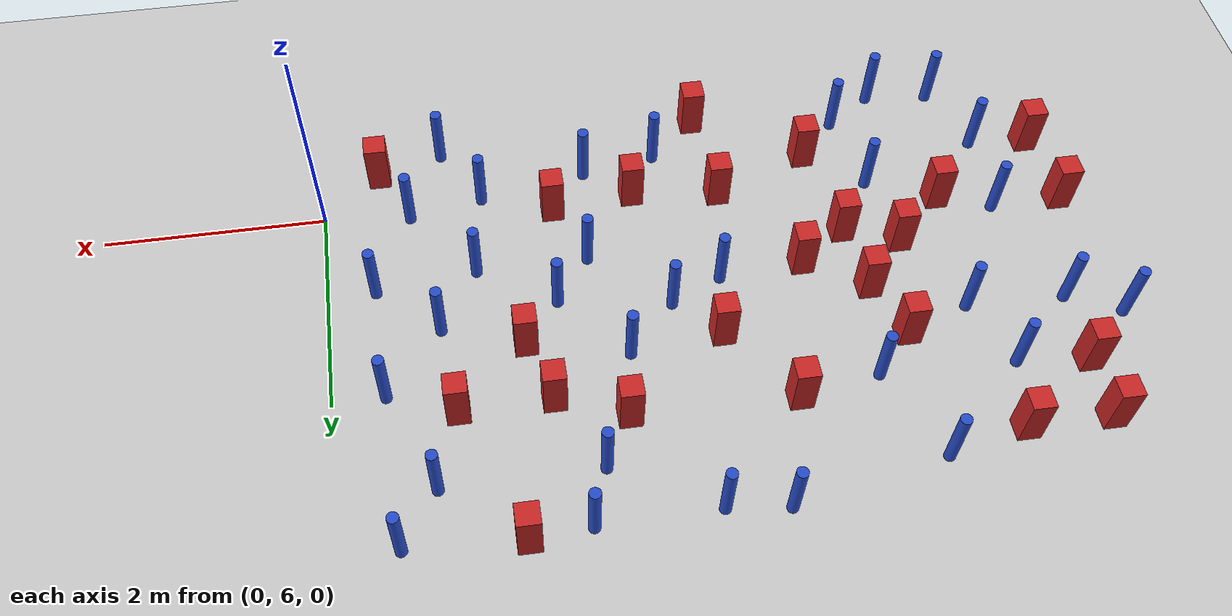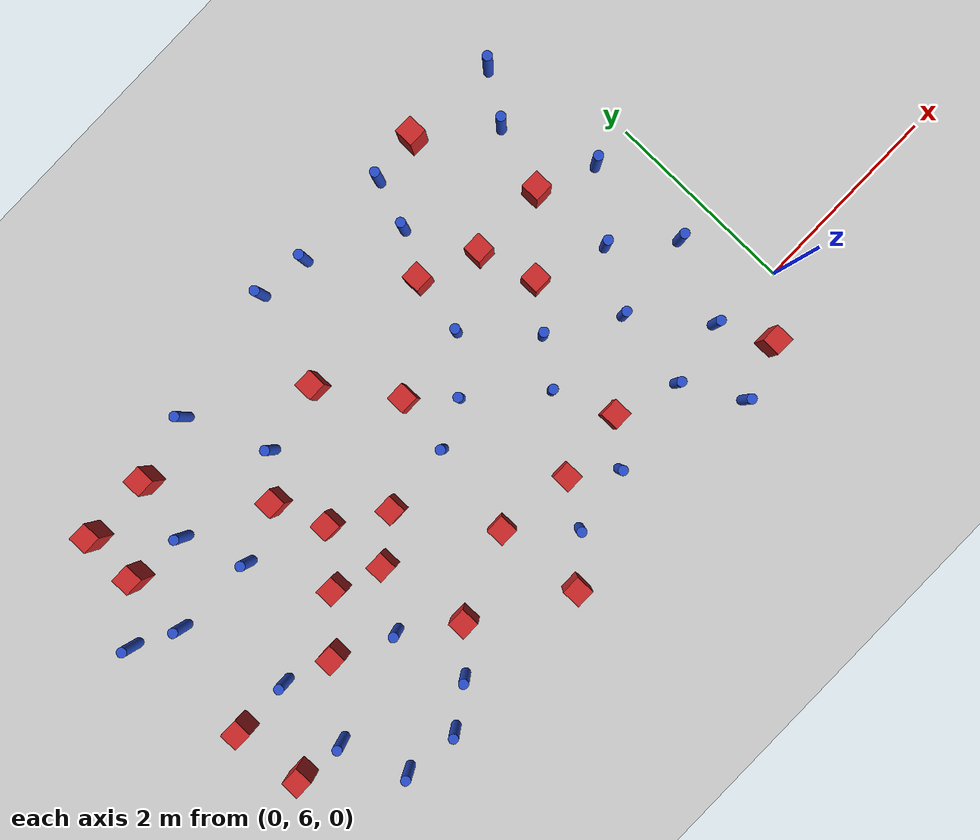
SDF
<sdf version="1.6">
 <world name="default">
  <model name="ground_plane">
   <static>1</static>
   <link name="link">
    <collision name="collision">
     <geometry><plane><normal>0 0 1</normal><size>100 100</size></plane></geometry>
     <surface><friction><ode><mu>100</mu><mu2>50</mu2></ode></friction></surface>
    </collision>
    <visual name="visual">
     <cast_shadows>0</cast_shadows>
     <geometry><plane><normal>0 0 1</normal><size>100 100</size></plane></geometry>
     <material>
      <ambient>1.0 1.0 1.0 1.0</ambient>
      <diffuse>0.8 0.8 0.8 1.0</diffuse>
      <specular>0.01 0.01 0.01 1.000000</specular>
     </material>
    </visual>
   </link>
  </model>
  <model name="pole_obstacle2">
   <static>true</static>
   <pose>-4.61047686809 8.33321980934 2.88873142074e-08 -9.9053668967e-09 4.60219948993e-07 -1.20965994957e-07</pose>
   <link name="link">
    <pose>0 0 0.3 0 -0 0</pose>
    <inertial>
     <mass>1</mass>
     <inertia><ixx>0.145833</ixx><ixy>0</ixy><ixz>0</ixz><iyy>0.145833</iyy><iyz>0</iyz><izz>0.125</izz></inertia>
    </inertial>
    <collision name="collision">
     <geometry><cylinder><radius>0.05</radius><length>.6</length></cylinder></geometry>
    </collision>
    <visual name="visual">
     <geometry><cylinder><radius>0.05</radius><length>.6</length></cylinder></geometry>
     <material>
      <script><name>Gazebo/Blue</name><uri>file://media/materials/scripts/gazebo.material</uri></script>
     </material>
    </visual>
   </link>
  </model>
  <model name="pole_obstacle3">
   <static>true</static>
   <pose>-6.16759911204 5.90546108467 2.88873142074e-08 -9.90536690842e-09 4.60219948965e-07 -1.20965994976e-07</pose>
   <link name="link">
    <pose>0 0 0.3 0 -0 0</pose>
    <inertial>
     <mass>1</mass>
     <inertia><ixx>0.145833</ixx><ixy>0</ixy><ixz>0</ixz><iyy>0.145833</iyy><iyz>0</iyz><izz>0.125</izz></inertia>
    </inertial>
    <collision name="collision">
     <geometry><cylinder><radius>0.05</radius><length>.6</length></cylinder></geometry>
    </collision>
    <visual name="visual">
     <geometry><cylinder><radius>0.05</radius><length>.6</length></cylinder></geometry>
     <material>
      <script><name>Gazebo/Blue</name><uri>file://media/materials/scripts/gazebo.material</uri></script>
     </material>
    </visual>
   </link>
  </model>
  <model name="pole_obstacle12">
   <static>true</static>
   <pose>-6.8986550622 7.99468464526 2.88873142074e-08 -9.90536689847e-09 4.60219948989e-07 -1.2096599496e-07</pose>
   <link name="link">
    <pose>0 0 0.3 0 -0 0</pose>
    <inertial>
     <mass>1</mass>
     <inertia><ixx>0.145833</ixx><ixy>0</ixy><ixz>0</ixz><iyy>0.145833</iyy><iyz>0</iyz><izz>0.125</izz></inertia>
    </inertial>
    <collision name="collision">
     <geometry><cylinder><radius>0.05</radius><length>.6</length></cylinder></geometry>
    </collision>
    <visual name="visual">
     <geometry><cylinder><radius>0.05</radius><length>.6</length></cylinder></geometry>
     <material>
      <script><name>Gazebo/Blue</name><uri>file://media/materials/scripts/gazebo.material</uri></script>
     </material>
    </visual>
   </link>
  </model>
  <model name="square_post_obstacle8">
   <static>true</static>
   <pose>-6.68188247831 5.96038204234 8.22691968438e-08 7.2212513382e-06 -7.54495500217e-07 2.29674213826e-05</pose>
   <link name="link">
    <pose>0 0 0.25 0 -0 0</pose>
    <inertial>
     <mass>100</mass>
     <inertia>
      <ixx>0.166667</ixx>
      <ixy>0</ixy>
      <ixz>0</ixz>
      <iyy>0.166667</iyy>
      <iyz>0</iyz>
      <izz>0.166667</izz>
     </inertia>
    </inertial>
    <collision name="collision"><geometry><box><size>.2 .2 .5</size></box></geometry></collision>
    <visual name="visual">
     <geometry><box><size>.2 .2 .5</size></box></geometry>
     <material>
      <script><name>Gazebo/Red</name><uri>file://media/materials/scripts/gazebo.material</uri></script>
     </material>
    </visual>
   </link>
  </model>
  <model name="square_post_obstacle9">
   <static>true</static>
   <pose>-6.7540369003 6.69056023257 8.22691968438e-08 7.22125133819e-06 -7.54495500217e-07 2.29674213826e-05</pose>
   <link name="link">
    <pose>0 0 0.25 0 -0 0</pose>
    <inertial>
     <mass>100</mass>
     <inertia>
      <ixx>0.166667</ixx>
      <ixy>0</ixy>
      <ixz>0</ixz>
      <iyy>0.166667</iyy>
      <iyz>0</iyz>
      <izz>0.166667</izz>
     </inertia>
    </inertial>
    <collision name="collision"><geometry><box><size>.2 .2 .5</size></box></geometry></collision>
    <visual name="visual">
     <geometry><box><size>.2 .2 .5</size></box></geometry>
     <material>
      <script><name>Gazebo/Red</name><uri>file://media/materials/scripts/gazebo.material</uri></script>
     </material>
    </visual>
   </link>
  </model>
  <model name="pole_obstacle15">
   <static>true</static>
   <pose>-5.55113076476 7.75056409933 2.88873142074e-08 -9.90536690842e-09 4.60219948965e-07 -1.20965994976e-07</pose>
   <link name="link">
    <pose>0 0 0.3 0 -0 0</pose>
    <inertial>
     <mass>1</mass>
     <inertia><ixx>0.145833</ixx><ixy>0</ixy><ixz>0</ixz><iyy>0.145833</iyy><iyz>0</iyz><izz>0.125</izz></inertia>
    </inertial>
    <collision name="collision">
     <geometry><cylinder><radius>0.05</radius><length>.6</length></cylinder></geometry>
    </collision>
    <visual name="visual">
     <geometry><cylinder><radius>0.05</radius><length>.6</length></cylinder></geometry>
     <material>
      <script><name>Gazebo/Blue</name><uri>file://media/materials/scripts/gazebo.material</uri></script>
     </material>
    </visual>
   </link>
  </model>
  <model name="pole_obstacle16">
   <static>true</static>
   <pose>-0.505072555338 9.38024264387 2.88873142074e-08 -9.90536691171e-09 4.60219948957e-07 -1.20965994981e-07</pose>
   <link name="link">
    <pose>0 0 0.3 0 -0 0</pose>
    <inertial>
     <mass>1</mass>
     <inertia><ixx>0.145833</ixx><ixy>0</ixy><ixz>0</ixz><iyy>0.145833</iyy><iyz>0</iyz><izz>0.125</izz></inertia>
    </inertial>
    <collision name="collision">
     <geometry><cylinder><radius>0.05</radius><length>.6</length></cylinder></geometry>
    </collision>
    <visual name="visual">
     <geometry><cylinder><radius>0.05</radius><length>.6</length></cylinder></geometry>
     <material>
      <script><name>Gazebo/Blue</name><uri>file://media/materials/scripts/gazebo.material</uri></script>
     </material>
    </visual>
   </link>
  </model>
  <model name="square_post_obstacle16">
   <static>true</static>
   <pose>-5.66090826564 9.00581298364 8.22691968438e-08 7.22125133819e-06 -7.54495500217e-07 2.29674213826e-05</pose>
   <link name="link">
    <pose>0 0 0.25 0 -0 0</pose>
    <inertial>
     <mass>100</mass>
     <inertia>
      <ixx>0.166667</ixx>
      <ixy>0</ixy>
      <ixz>0</ixz>
      <iyy>0.166667</iyy>
      <iyz>0</iyz>
      <izz>0.166667</izz>
     </inertia>
    </inertial>
    <collision name="collision"><geometry><box><size>.2 .2 .5</size></box></geometry></collision>
    <visual name="visual">
     <geometry><box><size>.2 .2 .5</size></box></geometry>
     <material>
      <script><name>Gazebo/Red</name><uri>file://media/materials/scripts/gazebo.material</uri></script>
     </material>
    </visual>
   </link>
  </model>
  <model name="pole_obstacle20">
   <static>true</static>
   <pose>-0.825885710078 8.897537406 2.88873142074e-08 -9.90536690779e-09 4.60219948967e-07 -1.20965994975e-07</pose>
   <link name="link">
    <pose>0 0 0.3 0 -0 0</pose>
    <inertial>
     <mass>1</mass>
     <inertia><ixx>0.145833</ixx><ixy>0</ixy><ixz>0</ixz><iyy>0.145833</iyy><iyz>0</iyz><izz>0.125</izz></inertia>
    </inertial>
    <collision name="collision">
     <geometry><cylinder><radius>0.05</radius><length>.6</length></cylinder></geometry>
    </collision>
    <visual name="visual">
     <geometry><cylinder><radius>0.05</radius><length>.6</length></cylinder></geometry>
     <material>
      <script><name>Gazebo/Blue</name><uri>file://media/materials/scripts/gazebo.material</uri></script>
     </material>
    </visual>
   </link>
  </model>
  <model name="square_post_obstacle20">
   <static>true</static>
   <pose>-3.62441373691 6.20708967607 8.22691968438e-08 7.2212513382e-06 -7.54495500217e-07 2.29674213826e-05</pose>
   <link name="link">
    <pose>0 0 0.25 0 -0 0</pose>
    <inertial>
     <mass>100</mass>
     <inertia>
      <ixx>0.166667</ixx>
      <ixy>0</ixy>
      <ixz>0</ixz>
      <iyy>0.166667</iyy>
      <iyz>0</iyz>
      <izz>0.166667</izz>
     </inertia>
    </inertial>
    <collision name="collision"><geometry><box><size>.2 .2 .5</size></box></geometry></collision>
    <visual name="visual">
     <geometry><box><size>.2 .2 .5</size></box></geometry>
     <material>
      <script><name>Gazebo/Red</name><uri>file://media/materials/scripts/gazebo.material</uri></script>
     </material>
    </visual>
   </link>
  </model>
  <model name="square_post_obstacle22">
   <static>true</static>
   <pose>-6.40739394139 8.43929187216 8.22691968438e-08 7.22125133819e-06 -7.54495500217e-07 2.29674213826e-05</pose>
   <link name="link">
    <pose>0 0 0.25 0 -0 0</pose>
    <inertial>
     <mass>100</mass>
     <inertia>
      <ixx>0.166667</ixx>
      <ixy>0</ixy>
      <ixz>0</ixz>
      <iyy>0.166667</iyy>
      <iyz>0</iyz>
      <izz>0.166667</izz>
     </inertia>
    </inertial>
    <collision name="collision"><geometry><box><size>.2 .2 .5</size></box></geometry></collision>
    <visual name="visual">
     <geometry><box><size>.2 .2 .5</size></box></geometry>
     <material>
      <script><name>Gazebo/Red</name><uri>file://media/materials/scripts/gazebo.material</uri></script>
     </material>
    </visual>
   </link>
  </model>
  <model name="square_post_obstacle23">
   <static>true</static>
   <pose>-1.67722835875 7.62699790733 8.22691968438e-08 7.2212513382e-06 -7.54495500217e-07 2.29674213826e-05</pose>
   <link name="link">
    <pose>0 0 0.25 0 -0 0</pose>
    <inertial>
     <mass>100</mass>
     <inertia>
      <ixx>0.166667</ixx>
      <ixy>0</ixy>
      <ixz>0</ixz>
      <iyy>0.166667</iyy>
      <iyz>0</iyz>
      <izz>0.166667</izz>
     </inertia>
    </inertial>
    <collision name="collision"><geometry><box><size>.2 .2 .5</size></box></geometry></collision>
    <visual name="visual">
     <geometry><box><size>.2 .2 .5</size></box></geometry>
     <material>
      <script><name>Gazebo/Red</name><uri>file://media/materials/scripts/gazebo.material</uri></script>
     </material>
    </visual>
   </link>
  </model>
  <model name="pole_obstacle31">
   <static>true</static>
   <pose>-3.46925933112 7.15142475565 2.88873142074e-08 -9.90536689859e-09 4.60219948989e-07 -1.20965994961e-07</pose>
   <link name="link">
    <pose>0 0 0.3 0 -0 0</pose>
    <inertial>
     <mass>1</mass>
     <inertia><ixx>0.145833</ixx><ixy>0</ixy><ixz>0</ixz><iyy>0.145833</iyy><iyz>0</iyz><izz>0.125</izz></inertia>
    </inertial>
    <collision name="collision">
     <geometry><cylinder><radius>0.05</radius><length>.6</length></cylinder></geometry>
    </collision>
    <visual name="visual">
     <geometry><cylinder><radius>0.05</radius><length>.6</length></cylinder></geometry>
     <material>
      <script><name>Gazebo/Blue</name><uri>file://media/materials/scripts/gazebo.material</uri></script>
     </material>
    </visual>
   </link>
  </model>
  <model name="square_post_obstacle27">
   <static>true</static>
   <pose>-4.74917922006 7.44215000752 8.22691968438e-08 7.2212513382e-06 -7.54495500217e-07 2.29674213826e-05</pose>
   <link name="link">
    <pose>0 0 0.25 0 -0 0</pose>
    <inertial>
     <mass>100</mass>
     <inertia>
      <ixx>0.166667</ixx>
      <ixy>0</ixy>
      <ixz>0</ixz>
      <iyy>0.166667</iyy>
      <iyz>0</iyz>
      <izz>0.166667</izz>
     </inertia>
    </inertial>
    <collision name="collision"><geometry><box><size>.2 .2 .5</size></box></geometry></collision>
    <visual name="visual">
     <geometry><box><size>.2 .2 .5</size></box></geometry>
     <material>
      <script><name>Gazebo/Red</name><uri>file://media/materials/scripts/gazebo.material</uri></script>
     </material>
    </visual>
   </link>
  </model>
  <model name="square_post_obstacle28">
   <static>true</static>
   <pose>-1.04694827906 8.21849046534 8.22691968438e-08 7.22125133819e-06 -7.54495500217e-07 2.29674213826e-05</pose>
   <link name="link">
    <pose>0 0 0.25 0 -0 0</pose>
    <inertial>
     <mass>100</mass>
     <inertia>
      <ixx>0.166667</ixx>
      <ixy>0</ixy>
      <ixz>0</ixz>
      <iyy>0.166667</iyy>
      <iyz>0</iyz>
      <izz>0.166667</izz>
     </inertia>
    </inertial>
    <collision name="collision"><geometry><box><size>.2 .2 .5</size></box></geometry></collision>
    <visual name="visual">
     <geometry><box><size>.2 .2 .5</size></box></geometry>
     <material>
      <script><name>Gazebo/Red</name><uri>file://media/materials/scripts/gazebo.material</uri></script>
     </material>
    </visual>
   </link>
  </model>
  <model name="pole_obstacle39">
   <static>true</static>
   <pose>-2.01759208878 9.39129024135 2.88873142074e-08 -9.9053669068e-09 4.60219948969e-07 -1.20965994974e-07</pose>
   <link name="link">
    <pose>0 0 0.3 0 -0 0</pose>
    <inertial>
     <mass>1</mass>
     <inertia><ixx>0.145833</ixx><ixy>0</ixy><ixz>0</ixz><iyy>0.145833</iyy><iyz>0</iyz><izz>0.125</izz></inertia>
    </inertial>
    <collision name="collision">
     <geometry><cylinder><radius>0.05</radius><length>.6</length></cylinder></geometry>
    </collision>
    <visual name="visual">
     <geometry><cylinder><radius>0.05</radius><length>.6</length></cylinder></geometry>
     <material>
      <script><name>Gazebo/Blue</name><uri>file://media/materials/scripts/gazebo.material</uri></script>
     </material>
    </visual>
   </link>
  </model>
  <model name="pole_obstacle45">
   <static>true</static>
   <pose>-1.32857079894 6.78585005766 2.88873142074e-08 -9.90536689852e-09 4.60219948989e-07 -1.2096599496e-07</pose>
   <link name="link">
    <pose>0 0 0.3 0 -0 0</pose>
    <inertial>
     <mass>1</mass>
     <inertia><ixx>0.145833</ixx><ixy>0</ixy><ixz>0</ixz><iyy>0.145833</iyy><iyz>0</iyz><izz>0.125</izz></inertia>
    </inertial>
    <collision name="collision">
     <geometry><cylinder><radius>0.05</radius><length>.6</length></cylinder></geometry>
    </collision>
    <visual name="visual">
     <geometry><cylinder><radius>0.05</radius><length>.6</length></cylinder></geometry>
     <material>
      <script><name>Gazebo/Blue</name><uri>file://media/materials/scripts/gazebo.material</uri></script>
     </material>
    </visual>
   </link>
  </model>
  <model name="square_post_obstacle37">
   <static>true</static>
   <pose>-2.4490061269 8.44310439441 8.22691968438e-08 7.22125133819e-06 -7.54495500217e-07 2.29674213826e-05</pose>
   <link name="link">
    <pose>0 0 0.25 0 -0 0</pose>
    <inertial>
     <mass>100</mass>
     <inertia>
      <ixx>0.166667</ixx>
      <ixy>0</ixy>
      <ixz>0</ixz>
      <iyy>0.166667</iyy>
      <iyz>0</iyz>
      <izz>0.166667</izz>
     </inertia>
    </inertial>
    <collision name="collision"><geometry><box><size>.2 .2 .5</size></box></geometry></collision>
    <visual name="visual">
     <geometry><box><size>.2 .2 .5</size></box></geometry>
     <material>
      <script><name>Gazebo/Red</name><uri>file://media/materials/scripts/gazebo.material</uri></script>
     </material>
    </visual>
   </link>
  </model>
  <model name="pole_obstacle51">
   <static>true</static>
   <pose>-2.9995978725 7.37171358002 2.88873142074e-08 -9.90536689859e-09 4.60219948989e-07 -1.20965994961e-07</pose>
   <link name="link">
    <pose>0 0 0.3 0 -0 0</pose>
    <inertial>
     <mass>1</mass>
     <inertia><ixx>0.145833</ixx><ixy>0</ixy><ixz>0</ixz><iyy>0.145833</iyy><iyz>0</iyz><izz>0.125</izz></inertia>
    </inertial>
    <collision name="collision">
     <geometry><cylinder><radius>0.05</radius><length>.6</length></cylinder></geometry>
    </collision>
    <visual name="visual">
     <geometry><cylinder><radius>0.05</radius><length>.6</length></cylinder></geometry>
     <material>
      <script><name>Gazebo/Blue</name><uri>file://media/materials/scripts/gazebo.material</uri></script>
     </material>
    </visual>
   </link>
  </model>
  <model name="pole_obstacle55">
   <static>true</static>
   <pose>-2.32916126313 6.77885882836 2.88873142074e-08 -9.90536689859e-09 4.60219948989e-07 -1.20965994961e-07</pose>
   <link name="link">
    <pose>0 0 0.3 0 -0 0</pose>
    <inertial>
     <mass>1</mass>
     <inertia><ixx>0.145833</ixx><ixy>0</ixy><ixz>0</ixz><iyy>0.145833</iyy><iyz>0</iyz><izz>0.125</izz></inertia>
    </inertial>
    <collision name="collision">
     <geometry><cylinder><radius>0.05</radius><length>.6</length></cylinder></geometry>
    </collision>
    <visual name="visual">
     <geometry><cylinder><radius>0.05</radius><length>.6</length></cylinder></geometry>
     <material>
      <script><name>Gazebo/Blue</name><uri>file://media/materials/scripts/gazebo.material</uri></script>
     </material>
    </visual>
   </link>
  </model>
  <model name="pole_obstacle60">
   <static>true</static>
   <pose>-0.426104892559 6.89767492997 2.88873142074e-08 -9.90536689683e-09 4.60219948993e-07 -1.20965994957e-07</pose>
   <link name="link">
    <pose>0 0 0.3 0 -0 0</pose>
    <inertial>
     <mass>1</mass>
     <inertia><ixx>0.145833</ixx><ixy>0</ixy><ixz>0</ixz><iyy>0.145833</iyy><iyz>0</iyz><izz>0.125</izz></inertia>
    </inertial>
    <collision name="collision">
     <geometry><cylinder><radius>0.05</radius><length>.6</length></cylinder></geometry>
    </collision>
    <visual name="visual">
     <geometry><cylinder><radius>0.05</radius><length>.6</length></cylinder></geometry>
     <material>
      <script><name>Gazebo/Blue</name><uri>file://media/materials/scripts/gazebo.material</uri></script>
     </material>
    </visual>
   </link>
  </model>
  <model name="square_post_obstacle47">
   <static>true</static>
   <pose>-4.51282511651 5.86225947715 8.22691968438e-08 7.2212513382e-06 -7.54495500217e-07 2.29674213826e-05</pose>
   <link name="link">
    <pose>0 0 0.25 0 -0 0</pose>
    <inertial>
     <mass>100</mass>
     <inertia>
      <ixx>0.166667</ixx>
      <ixy>0</ixy>
      <ixz>0</ixz>
      <iyy>0.166667</iyy>
      <iyz>0</iyz>
      <izz>0.166667</izz>
     </inertia>
    </inertial>
    <collision name="collision"><geometry><box><size>.2 .2 .5</size></box></geometry></collision>
    <visual name="visual">
     <geometry><box><size>.2 .2 .5</size></box></geometry>
     <material>
      <script><name>Gazebo/Red</name><uri>file://media/materials/scripts/gazebo.material</uri></script>
     </material>
    </visual>
   </link>
  </model>
  <model name="pole_obstacle77">
   <static>true</static>
   <pose>-5.03957593601 6.25631579111 2.88873142074e-08 -9.90536690842e-09 4.60219948965e-07 -1.20965994976e-07</pose>
   <link name="link">
    <pose>0 0 0.3 0 -0 0</pose>
    <inertial>
     <mass>1</mass>
     <inertia><ixx>0.145833</ixx><ixy>0</ixy><ixz>0</ixz><iyy>0.145833</iyy><iyz>0</iyz><izz>0.125</izz></inertia>
    </inertial>
    <collision name="collision">
     <geometry><cylinder><radius>0.05</radius><length>.6</length></cylinder></geometry>
    </collision>
    <visual name="visual">
     <geometry><cylinder><radius>0.05</radius><length>.6</length></cylinder></geometry>
     <material>
      <script><name>Gazebo/Blue</name><uri>file://media/materials/scripts/gazebo.material</uri></script>
     </material>
    </visual>
   </link>
  </model>
  <model name="pole_obstacle78">
   <static>true</static>
   <pose>-0.779376938567 6.09048975539 2.88873142074e-08 -9.90536689661e-09 4.60219948993e-07 -1.20965994957e-07</pose>
   <link name="link">
    <pose>0 0 0.3 0 -0 0</pose>
    <inertial>
     <mass>1</mass>
     <inertia><ixx>0.145833</ixx><ixy>0</ixy><ixz>0</ixz><iyy>0.145833</iyy><iyz>0</iyz><izz>0.125</izz></inertia>
    </inertial>
    <collision name="collision">
     <geometry><cylinder><radius>0.05</radius><length>.6</length></cylinder></geometry>
    </collision>
    <visual name="visual">
     <geometry><cylinder><radius>0.05</radius><length>.6</length></cylinder></geometry>
     <material>
      <script><name>Gazebo/Blue</name><uri>file://media/materials/scripts/gazebo.material</uri></script>
     </material>
    </visual>
   </link>
  </model>
  <model name="pole_obstacle80">
   <static>true</static>
   <pose>-2.00517174281 7.21202672843 2.88873142074e-08 -9.90536689575e-09 4.60219948995e-07 -1.20965994956e-07</pose>
   <link name="link">
    <pose>0 0 0.3 0 -0 0</pose>
    <inertial>
     <mass>1</mass>
     <inertia><ixx>0.145833</ixx><ixy>0</ixy><ixz>0</ixz><iyy>0.145833</iyy><iyz>0</iyz><izz>0.125</izz></inertia>
    </inertial>
    <collision name="collision">
     <geometry><cylinder><radius>0.05</radius><length>.6</length></cylinder></geometry>
    </collision>
    <visual name="visual">
     <geometry><cylinder><radius>0.05</radius><length>.6</length></cylinder></geometry>
     <material>
      <script><name>Gazebo/Blue</name><uri>file://media/materials/scripts/gazebo.material</uri></script>
     </material>
    </visual>
   </link>
  </model>
  <model name="square_post_obstacle69">
   <static>true</static>
   <pose>-1.49828881373 9.43699931908 8.22691968438e-08 7.22125133819e-06 -7.54495500217e-07 2.29674213826e-05</pose>
   <link name="link">
    <pose>0 0 0.25 0 -0 0</pose>
    <inertial>
     <mass>100</mass>
     <inertia>
      <ixx>0.166667</ixx>
      <ixy>0</ixy>
      <ixz>0</ixz>
      <iyy>0.166667</iyy>
      <iyz>0</iyz>
      <izz>0.166667</izz>
     </inertia>
    </inertial>
    <collision name="collision"><geometry><box><size>.2 .2 .5</size></box></geometry></collision>
    <visual name="visual">
     <geometry><box><size>.2 .2 .5</size></box></geometry>
     <material>
      <script><name>Gazebo/Red</name><uri>file://media/materials/scripts/gazebo.material</uri></script>
     </material>
    </visual>
   </link>
  </model>
  <model name="square_post_obstacle76">
   <static>true</static>
   <pose>-2.08411877581 6.18728832296 8.22691968438e-08 7.22125133819e-06 -7.54495500217e-07 2.29674213826e-05</pose>
   <link name="link">
    <pose>0 0 0.25 0 -0 0</pose>
    <inertial>
     <mass>100</mass>
     <inertia>
      <ixx>0.166667</ixx>
      <ixy>0</ixy>
      <ixz>0</ixz>
      <iyy>0.166667</iyy>
      <iyz>0</iyz>
      <izz>0.166667</izz>
     </inertia>
    </inertial>
    <collision name="collision"><geometry><box><size>.2 .2 .5</size></box></geometry></collision>
    <visual name="visual">
     <geometry><box><size>.2 .2 .5</size></box></geometry>
     <material>
      <script><name>Gazebo/Red</name><uri>file://media/materials/scripts/gazebo.material</uri></script>
     </material>
    </visual>
   </link>
  </model>
  <model name="pole_obstacle98">
   <static>true</static>
   <pose>-5.33621778216 5.19457930177 2.88873142074e-08 -9.90536690842e-09 4.60219948965e-07 -1.20965994976e-07</pose>
   <link name="link">
    <pose>0 0 0.3 0 -0 0</pose>
    <inertial>
     <mass>1</mass>
     <inertia><ixx>0.145833</ixx><ixy>0</ixy><ixz>0</ixz><iyy>0.145833</iyy><iyz>0</iyz><izz>0.125</izz></inertia>
    </inertial>
    <collision name="collision">
     <geometry><cylinder><radius>0.05</radius><length>.6</length></cylinder></geometry>
    </collision>
    <visual name="visual">
     <geometry><cylinder><radius>0.05</radius><length>.6</length></cylinder></geometry>
     <material>
      <script><name>Gazebo/Blue</name><uri>file://media/materials/scripts/gazebo.material</uri></script>
     </material>
    </visual>
   </link>
  </model>
  <model name="pole_obstacle106">
   <static>true</static>
   <pose>-6.43738177591 7.77346182976 2.88873142074e-08 -9.90536690842e-09 4.60219948965e-07 -1.20965994976e-07</pose>
   <link name="link">
    <pose>0 0 0.3 0 -0 0</pose>
    <inertial>
     <mass>1</mass>
     <inertia><ixx>0.145833</ixx><ixy>0</ixy><ixz>0</ixz><iyy>0.145833</iyy><iyz>0</iyz><izz>0.125</izz></inertia>
    </inertial>
    <collision name="collision">
     <geometry><cylinder><radius>0.05</radius><length>.6</length></cylinder></geometry>
    </collision>
    <visual name="visual">
     <geometry><cylinder><radius>0.05</radius><length>.6</length></cylinder></geometry>
     <material>
      <script><name>Gazebo/Blue</name><uri>file://media/materials/scripts/gazebo.material</uri></script>
     </material>
    </visual>
   </link>
  </model>
  <model name="square_post_obstacle101">
   <static>true</static>
   <pose>-3.54421731048 5.2884571698 8.22691968438e-08 7.2212513382e-06 -7.54495500217e-07 2.29674213826e-05</pose>
   <link name="link">
    <pose>0 0 0.25 0 -0 0</pose>
    <inertial>
     <mass>100</mass>
     <inertia>
      <ixx>0.166667</ixx>
      <ixy>0</ixy>
      <ixz>0</ixz>
      <iyy>0.166667</iyy>
      <iyz>0</iyz>
      <izz>0.166667</izz>
     </inertia>
    </inertial>
    <collision name="collision"><geometry><box><size>.2 .2 .5</size></box></geometry></collision>
    <visual name="visual">
     <geometry><box><size>.2 .2 .5</size></box></geometry>
     <material>
      <script><name>Gazebo/Red</name><uri>file://media/materials/scripts/gazebo.material</uri></script>
     </material>
    </visual>
   </link>
  </model>
  <model name="pole_obstacle109">
   <static>true</static>
   <pose>-2.4267305476 5.78269095757 2.88873142074e-08 -9.90536689859e-09 4.60219948989e-07 -1.20965994961e-07</pose>
   <link name="link">
    <pose>0 0 0.3 0 -0 0</pose>
    <inertial>
     <mass>1</mass>
     <inertia><ixx>0.145833</ixx><ixy>0</ixy><ixz>0</ixz><iyy>0.145833</iyy><iyz>0</iyz><izz>0.125</izz></inertia>
    </inertial>
    <collision name="collision">
     <geometry><cylinder><radius>0.05</radius><length>.6</length></cylinder></geometry>
    </collision>
    <visual name="visual">
     <geometry><cylinder><radius>0.05</radius><length>.6</length></cylinder></geometry>
     <material>
      <script><name>Gazebo/Blue</name><uri>file://media/materials/scripts/gazebo.material</uri></script>
     </material>
    </visual>
   </link>
  </model>
  <model name="pole_obstacle116">
   <static>true</static>
   <pose>-5.80159872964 8.36854777862 2.88873142074e-08 -9.9053668967e-09 4.60219948993e-07 -1.20965994957e-07</pose>
   <link name="link">
    <pose>0 0 0.3 0 -0 0</pose>
    <inertial>
     <mass>1</mass>
     <inertia><ixx>0.145833</ixx><ixy>0</ixy><ixz>0</ixz><iyy>0.145833</iyy><iyz>0</iyz><izz>0.125</izz></inertia>
    </inertial>
    <collision name="collision">
     <geometry><cylinder><radius>0.05</radius><length>.6</length></cylinder></geometry>
    </collision>
    <visual name="visual">
     <geometry><cylinder><radius>0.05</radius><length>.6</length></cylinder></geometry>
     <material>
      <script><name>Gazebo/Blue</name><uri>file://media/materials/scripts/gazebo.material</uri></script>
     </material>
    </visual>
   </link>
  </model>
  <model name="square_post_obstacle117">
   <static>true</static>
   <pose>-4.66564887285 6.79314774167 8.22691968438e-08 7.22125133819e-06 -7.54495500217e-07 2.29674213826e-05</pose>
   <link name="link">
    <pose>0 0 0.25 0 -0 0</pose>
    <inertial>
     <mass>100</mass>
     <inertia>
      <ixx>0.166667</ixx>
      <ixy>0</ixy>
      <ixz>0</ixz>
      <iyy>0.166667</iyy>
      <iyz>0</iyz>
      <izz>0.166667</izz>
     </inertia>
    </inertial>
    <collision name="collision"><geometry><box><size>.2 .2 .5</size></box></geometry></collision>
    <visual name="visual">
     <geometry><box><size>.2 .2 .5</size></box></geometry>
     <material>
      <script><name>Gazebo/Red</name><uri>file://media/materials/scripts/gazebo.material</uri></script>
     </material>
    </visual>
   </link>
  </model>
  <model name="pole_obstacle130">
   <static>true</static>
   <pose>-0.966519469347 7.37336321938 2.88873142074e-08 -9.90536689644e-09 4.60219948994e-07 -1.20965994957e-07</pose>
   <link name="link">
    <pose>0 0 0.3 0 -0 0</pose>
    <inertial>
     <mass>1</mass>
     <inertia><ixx>0.145833</ixx><ixy>0</ixy><ixz>0</ixz><iyy>0.145833</iyy><iyz>0</iyz><izz>0.125</izz></inertia>
    </inertial>
    <collision name="collision">
     <geometry><cylinder><radius>0.05</radius><length>.6</length></cylinder></geometry>
    </collision>
    <visual name="visual">
     <geometry><cylinder><radius>0.05</radius><length>.6</length></cylinder></geometry>
     <material>
      <script><name>Gazebo/Blue</name><uri>file://media/materials/scripts/gazebo.material</uri></script>
     </material>
    </visual>
   </link>
  </model>
  <model name="pole_obstacle133">
   <static>true</static>
   <pose>-2.19064762296 8.88941813704 2.88873142074e-08 -9.90536692318e-09 4.6021994893e-07 -1.20965994988e-07</pose>
   <link name="link">
    <pose>0 0 0.3 0 -0 0</pose>
    <inertial>
     <mass>1</mass>
     <inertia><ixx>0.145833</ixx><ixy>0</ixy><ixz>0</ixz><iyy>0.145833</iyy><iyz>0</iyz><izz>0.125</izz></inertia>
    </inertial>
    <collision name="collision">
     <geometry><cylinder><radius>0.05</radius><length>.6</length></cylinder></geometry>
    </collision>
    <visual name="visual">
     <geometry><cylinder><radius>0.05</radius><length>.6</length></cylinder></geometry>
     <material>
      <script><name>Gazebo/Blue</name><uri>file://media/materials/scripts/gazebo.material</uri></script>
     </material>
    </visual>
   </link>
  </model>
  <model name="pole_obstacle145">
   <static>true</static>
   <pose>-1.44740429254 5.95969155541 2.88873142074e-08 -9.90536689852e-09 4.60219948989e-07 -1.2096599496e-07</pose>
   <link name="link">
    <pose>0 0 0.3 0 -0 0</pose>
    <inertial>
     <mass>1</mass>
     <inertia><ixx>0.145833</ixx><ixy>0</ixy><ixz>0</ixz><iyy>0.145833</iyy><iyz>0</iyz><izz>0.125</izz></inertia>
    </inertial>
    <collision name="collision">
     <geometry><cylinder><radius>0.05</radius><length>.6</length></cylinder></geometry>
    </collision>
    <visual name="visual">
     <geometry><cylinder><radius>0.05</radius><length>.6</length></cylinder></geometry>
     <material>
      <script><name>Gazebo/Blue</name><uri>file://media/materials/scripts/gazebo.material</uri></script>
     </material>
    </visual>
   </link>
  </model>
  <model name="pole_obstacle153">
   <static>true</static>
   <pose>-3.06597285531 9.37279373408 2.88873142074e-08 -9.9053668994e-09 4.60219948987e-07 -1.20965994963e-07</pose>
   <link name="link">
    <pose>0 0 0.3 0 -0 0</pose>
    <inertial>
     <mass>1</mass>
     <inertia><ixx>0.145833</ixx><ixy>0</ixy><ixz>0</ixz><iyy>0.145833</iyy><iyz>0</iyz><izz>0.125</izz></inertia>
    </inertial>
    <collision name="collision">
     <geometry><cylinder><radius>0.05</radius><length>.6</length></cylinder></geometry>
    </collision>
    <visual name="visual">
     <geometry><cylinder><radius>0.05</radius><length>.6</length></cylinder></geometry>
     <material>
      <script><name>Gazebo/Blue</name><uri>file://media/materials/scripts/gazebo.material</uri></script>
     </material>
    </visual>
   </link>
  </model>
  <model name="square_post_obstacle152">
   <static>true</static>
   <pose>-3.88503110338 8.46802140746 8.22691968438e-08 7.22125133819e-06 -7.54495500217e-07 2.29674213826e-05</pose>
   <link name="link">
    <pose>0 0 0.25 0 -0 0</pose>
    <inertial>
     <mass>100</mass>
     <inertia>
      <ixx>0.166667</ixx>
      <ixy>0</ixy>
      <ixz>0</ixz>
      <iyy>0.166667</iyy>
      <iyz>0</iyz>
      <izz>0.166667</izz>
     </inertia>
    </inertial>
    <collision name="collision"><geometry><box><size>.2 .2 .5</size></box></geometry></collision>
    <visual name="visual">
     <geometry><box><size>.2 .2 .5</size></box></geometry>
     <material>
      <script><name>Gazebo/Red</name><uri>file://media/materials/scripts/gazebo.material</uri></script>
     </material>
    </visual>
   </link>
  </model>
  <model name="pole_obstacle161">
   <static>true</static>
   <pose>-3.59690093863 9.43725016454 2.88873142074e-08 -9.90536692318e-09 4.6021994893e-07 -1.20965994988e-07</pose>
   <link name="link">
    <pose>0 0 0.3 0 -0 0</pose>
    <inertial>
     <mass>1</mass>
     <inertia><ixx>0.145833</ixx><ixy>0</ixy><ixz>0</ixz><iyy>0.145833</iyy><iyz>0</iyz><izz>0.125</izz></inertia>
    </inertial>
    <collision name="collision">
     <geometry><cylinder><radius>0.05</radius><length>.6</length></cylinder></geometry>
    </collision>
    <visual name="visual">
     <geometry><cylinder><radius>0.05</radius><length>.6</length></cylinder></geometry>
     <material>
      <script><name>Gazebo/Blue</name><uri>file://media/materials/scripts/gazebo.material</uri></script>
     </material>
    </visual>
   </link>
  </model>
  <model name="pole_obstacle162">
   <static>true</static>
   <pose>-0.459836084182 7.98311745206 2.88873142074e-08 -9.90536690338e-09 4.60219948977e-07 -1.2096599497e-07</pose>
   <link name="link">
    <pose>0 0 0.3 0 -0 0</pose>
    <inertial>
     <mass>1</mass>
     <inertia><ixx>0.145833</ixx><ixy>0</ixy><ixz>0</ixz><iyy>0.145833</iyy><iyz>0</iyz><izz>0.125</izz></inertia>
    </inertial>
    <collision name="collision">
     <geometry><cylinder><radius>0.05</radius><length>.6</length></cylinder></geometry>
    </collision>
    <visual name="visual">
     <geometry><cylinder><radius>0.05</radius><length>.6</length></cylinder></geometry>
     <material>
      <script><name>Gazebo/Blue</name><uri>file://media/materials/scripts/gazebo.material</uri></script>
     </material>
    </visual>
   </link>
  </model>
  <model name="pole_obstacle163">
   <static>true</static>
   <pose>-5.92762548571 5.24695040892 2.88873142074e-08 -9.90536690842e-09 4.60219948965e-07 -1.20965994976e-07</pose>
   <link name="link">
    <pose>0 0 0.3 0 -0 0</pose>
    <inertial>
     <mass>1</mass>
     <inertia><ixx>0.145833</ixx><ixy>0</ixy><ixz>0</ixz><iyy>0.145833</iyy><iyz>0</iyz><izz>0.125</izz></inertia>
    </inertial>
    <collision name="collision">
     <geometry><cylinder><radius>0.05</radius><length>.6</length></cylinder></geometry>
    </collision>
    <visual name="visual">
     <geometry><cylinder><radius>0.05</radius><length>.6</length></cylinder></geometry>
     <material>
      <script><name>Gazebo/Blue</name><uri>file://media/materials/scripts/gazebo.material</uri></script>
     </material>
    </visual>
   </link>
  </model>
  <model name="pole_obstacle168">
   <static>true</static>
   <pose>-4.96582038682 9.16520095948 2.88873142074e-08 -9.9053668967e-09 4.60219948993e-07 -1.20965994957e-07</pose>
   <link name="link">
    <pose>0 0 0.3 0 -0 0</pose>
    <inertial>
     <mass>1</mass>
     <inertia><ixx>0.145833</ixx><ixy>0</ixy><ixz>0</ixz><iyy>0.145833</iyy><iyz>0</iyz><izz>0.125</izz></inertia>
    </inertial>
    <collision name="collision">
     <geometry><cylinder><radius>0.05</radius><length>.6</length></cylinder></geometry>
    </collision>
    <visual name="visual">
     <geometry><cylinder><radius>0.05</radius><length>.6</length></cylinder></geometry>
     <material>
      <script><name>Gazebo/Blue</name><uri>file://media/materials/scripts/gazebo.material</uri></script>
     </material>
    </visual>
   </link>
  </model>
  <model name="square_post_obstacle167">
   <static>true</static>
   <pose>-4.95424848622 7.96632231721 8.22691968438e-08 7.22125133819e-06 -7.54495500217e-07 2.29674213826e-05</pose>
   <link name="link">
    <pose>0 0 0.25 0 -0 0</pose>
    <inertial>
     <mass>100</mass>
     <inertia>
      <ixx>0.166667</ixx>
      <ixy>0</ixy>
      <ixz>0</ixz>
      <iyy>0.166667</iyy>
      <iyz>0</iyz>
      <izz>0.166667</izz>
     </inertia>
    </inertial>
    <collision name="collision"><geometry><box><size>.2 .2 .5</size></box></geometry></collision>
    <visual name="visual">
     <geometry><box><size>.2 .2 .5</size></box></geometry>
     <material>
      <script><name>Gazebo/Red</name><uri>file://media/materials/scripts/gazebo.material</uri></script>
     </material>
    </visual>
   </link>
  </model>
  <model name="pole_obstacle169">
   <static>true</static>
   <pose>-3.10924371464 5.66305219498 2.88873142074e-08 -9.90536689859e-09 4.60219948989e-07 -1.20965994961e-07</pose>
   <link name="link">
    <pose>0 0 0.3 0 -0 0</pose>
    <inertial>
     <mass>1</mass>
     <inertia><ixx>0.145833</ixx><ixy>0</ixy><ixz>0</ixz><iyy>0.145833</iyy><iyz>0</iyz><izz>0.125</izz></inertia>
    </inertial>
    <collision name="collision">
     <geometry><cylinder><radius>0.05</radius><length>.6</length></cylinder></geometry>
    </collision>
    <visual name="visual">
     <geometry><cylinder><radius>0.05</radius><length>.6</length></cylinder></geometry>
     <material>
      <script><name>Gazebo/Blue</name><uri>file://media/materials/scripts/gazebo.material</uri></script>
     </material>
    </visual>
   </link>
  </model>
  <model name="square_post_obstacle169">
   <static>true</static>
   <pose>-4.21996504566 7.10088286221 8.22691968438e-08 7.22125133819e-06 -7.54495500217e-07 2.29674213826e-05</pose>
   <link name="link">
    <pose>0 0 0.25 0 -0 0</pose>
    <inertial>
     <mass>100</mass>
     <inertia>
      <ixx>0.166667</ixx>
      <ixy>0</ixy>
      <ixz>0</ixz>
      <iyy>0.166667</iyy>
      <iyz>0</iyz>
      <izz>0.166667</izz>
     </inertia>
    </inertial>
    <collision name="collision"><geometry><box><size>.2 .2 .5</size></box></geometry></collision>
    <visual name="visual">
     <geometry><box><size>.2 .2 .5</size></box></geometry>
     <material>
      <script><name>Gazebo/Red</name><uri>file://media/materials/scripts/gazebo.material</uri></script>
     </material>
    </visual>
   </link>
  </model>
  <model name="pole_obstacle183">
   <static>true</static>
   <pose>-6.13202089315 6.69527046409 2.88873142074e-08 -9.90536690842e-09 4.60219948965e-07 -1.20965994976e-07</pose>
   <link name="link">
    <pose>0 0 0.3 0 -0 0</pose>
    <inertial>
     <mass>1</mass>
     <inertia><ixx>0.145833</ixx><ixy>0</ixy><ixz>0</ixz><iyy>0.145833</iyy><iyz>0</iyz><izz>0.125</izz></inertia>
    </inertial>
    <collision name="collision">
     <geometry><cylinder><radius>0.05</radius><length>.6</length></cylinder></geometry>
    </collision>
    <visual name="visual">
     <geometry><cylinder><radius>0.05</radius><length>.6</length></cylinder></geometry>
     <material>
      <script><name>Gazebo/Blue</name><uri>file://media/materials/scripts/gazebo.material</uri></script>
     </material>
    </visual>
   </link>
  </model>
  <model name="square_post_obstacle192">
   <static>true</static>
   <pose>-1.85011793724 8.20757896952 8.22691968438e-08 7.22125133819e-06 -7.54495500217e-07 2.29674213826e-05</pose>
   <link name="link">
    <pose>0 0 0.25 0 -0 0</pose>
    <inertial>
     <mass>100</mass>
     <inertia>
      <ixx>0.166667</ixx>
      <ixy>0</ixy>
      <ixz>0</ixz>
      <iyy>0.166667</iyy>
      <iyz>0</iyz>
      <izz>0.166667</izz>
     </inertia>
    </inertial>
    <collision name="collision"><geometry><box><size>.2 .2 .5</size></box></geometry></collision>
    <visual name="visual">
     <geometry><box><size>.2 .2 .5</size></box></geometry>
     <material>
      <script><name>Gazebo/Red</name><uri>file://media/materials/scripts/gazebo.material</uri></script>
     </material>
    </visual>
   </link>
  </model>
  <model name="pole_obstacle193">
   <static>true</static>
   <pose>-4.90038143385 5.48087151314 2.88873142074e-08 -9.90536690842e-09 4.60219948965e-07 -1.20965994976e-07</pose>
   <link name="link">
    <pose>0 0 0.3 0 -0 0</pose>
    <inertial>
     <mass>1</mass>
     <inertia><ixx>0.145833</ixx><ixy>0</ixy><ixz>0</ixz><iyy>0.145833</iyy><iyz>0</iyz><izz>0.125</izz></inertia>
    </inertial>
    <collision name="collision">
     <geometry><cylinder><radius>0.05</radius><length>.6</length></cylinder></geometry>
    </collision>
    <visual name="visual">
     <geometry><cylinder><radius>0.05</radius><length>.6</length></cylinder></geometry>
     <material>
      <script><name>Gazebo/Blue</name><uri>file://media/materials/scripts/gazebo.material</uri></script>
     </material>
    </visual>
   </link>
  </model>
  <model name="pole_obstacle199">
   <static>true</static>
   <pose>-2.55729076264 7.83553054089 2.88873142074e-08 -9.90536689859e-09 4.60219948989e-07 -1.20965994961e-07</pose>
   <link name="link">
    <pose>0 0 0.3 0 -0 0</pose>
    <inertial>
     <mass>1</mass>
     <inertia><ixx>0.145833</ixx><ixy>0</ixy><ixz>0</ixz><iyy>0.145833</iyy><iyz>0</iyz><izz>0.125</izz></inertia>
    </inertial>
    <collision name="collision">
     <geometry><cylinder><radius>0.05</radius><length>.6</length></cylinder></geometry>
    </collision>
    <visual name="visual">
     <geometry><cylinder><radius>0.05</radius><length>.6</length></cylinder></geometry>
     <material>
      <script><name>Gazebo/Blue</name><uri>file://media/materials/scripts/gazebo.material</uri></script>
     </material>
    </visual>
   </link>
  </model>
  <model name="pole_obstacle209">
   <static>true</static>
   <pose>-1.10965610561 5.3745046883 2.88873142074e-08 -9.90536689852e-09 4.60219948989e-07 -1.2096599496e-07</pose>
   <link name="link">
    <pose>0 0 0.3 0 -0 0</pose>
    <inertial>
     <mass>1</mass>
     <inertia><ixx>0.145833</ixx><ixy>0</ixy><ixz>0</ixz><iyy>0.145833</iyy><iyz>0</iyz><izz>0.125</izz></inertia>
    </inertial>
    <collision name="collision">
     <geometry><cylinder><radius>0.05</radius><length>.6</length></cylinder></geometry>
    </collision>
    <visual name="visual">
     <geometry><cylinder><radius>0.05</radius><length>.6</length></cylinder></geometry>
     <material>
      <script><name>Gazebo/Blue</name><uri>file://media/materials/scripts/gazebo.material</uri></script>
     </material>
    </visual>
   </link>
  </model>
  <model name="square_post_obstacle209">
   <static>true</static>
   <pose>-5.63059603674 6.53083409423 8.22691968438e-08 7.22125133819e-06 -7.54495500217e-07 2.29674213826e-05</pose>
   <link name="link">
    <pose>0 0 0.25 0 -0 0</pose>
    <inertial>
     <mass>100</mass>
     <inertia>
      <ixx>0.166667</ixx>
      <ixy>0</ixy>
      <ixz>0</ixz>
      <iyy>0.166667</iyy>
      <iyz>0</iyz>
      <izz>0.166667</izz>
     </inertia>
    </inertial>
    <collision name="collision"><geometry><box><size>.2 .2 .5</size></box></geometry></collision>
    <visual name="visual">
     <geometry><box><size>.2 .2 .5</size></box></geometry>
     <material>
      <script><name>Gazebo/Red</name><uri>file://media/materials/scripts/gazebo.material</uri></script>
     </material>
    </visual>
   </link>
  </model>
  <model name="square_post_obstacle213">
   <static>true</static>
   <pose>-5.15365996738 6.97361996466 8.22691968438e-08 7.2212513382e-06 -7.54495500217e-07 2.29674213826e-05</pose>
   <link name="link">
    <pose>0 0 0.25 0 -0 0</pose>
    <inertial>
     <mass>100</mass>
     <inertia>
      <ixx>0.166667</ixx>
      <ixy>0</ixy>
      <ixz>0</ixz>
      <iyy>0.166667</iyy>
      <iyz>0</iyz>
      <izz>0.166667</izz>
     </inertia>
    </inertial>
    <collision name="collision"><geometry><box><size>.2 .2 .5</size></box></geometry></collision>
    <visual name="visual">
     <geometry><box><size>.2 .2 .5</size></box></geometry>
     <material>
      <script><name>Gazebo/Red</name><uri>file://media/materials/scripts/gazebo.material</uri></script>
     </material>
    </visual>
   </link>
  </model>
  <model name="square_post_obstacle214">
   <static>true</static>
   <pose>-2.82987996738 6.10772996466 8.22691968438e-08 7.2212513382e-06 -7.54495500217e-07 2.29674213826e-05</pose>
   <link name="link">
    <pose>0 0 0.25 0 -0 0</pose>
    <inertial>
     <mass>100</mass>
     <inertia>
      <ixx>0.166667</ixx>
      <ixy>0</ixy>
      <ixz>0</ixz>
      <iyy>0.166667</iyy>
      <iyz>0</iyz>
      <izz>0.166667</izz>
     </inertia>
    </inertial>
    <collision name="collision"><geometry><box><size>.2 .2 .5</size></box></geometry></collision>
    <visual name="visual">
     <geometry><box><size>.2 .2 .5</size></box></geometry>
     <material>
      <script><name>Gazebo/Red</name><uri>file://media/materials/scripts/gazebo.material</uri></script>
     </material>
    </visual>
   </link>
  </model>
  <model name="square_post_obstacle220">
   <static>true</static>
   <pose>-3.37188996738 7.75300996466 8.22691968438e-08 7.2212513382e-06 -7.54495500217e-07 2.29674213826e-05</pose>
   <link name="link">
    <pose>0 0 0.25 0 -0 0</pose>
    <inertial>
     <mass>100</mass>
     <inertia>
      <ixx>0.166667</ixx>
      <ixy>0</ixy>
      <ixz>0</ixz>
      <iyy>0.166667</iyy>
      <iyz>0</iyz>
      <izz>0.166667</izz>
     </inertia>
    </inertial>
    <collision name="collision"><geometry><box><size>.2 .2 .5</size></box></geometry></collision>
    <visual name="visual">
     <geometry><box><size>.2 .2 .5</size></box></geometry>
     <material>
      <script><name>Gazebo/Red</name><uri>file://media/materials/scripts/gazebo.material</uri></script>
     </material>
    </visual>
   </link>
  </model>
  <model name="square_post_obstacle228">
   <static>true</static>
   <pose>-0.523552967378 5.57049996466 8.22691968438e-08 7.2212513382e-06 -7.54495500217e-07 2.29674213826e-05</pose>
   <link name="link">
    <pose>0 0 0.25 0 -0 0</pose>
    <inertial>
     <mass>100</mass>
     <inertia>
      <ixx>0.166667</ixx>
      <ixy>0</ixy>
      <ixz>0</ixz>
      <iyy>0.166667</iyy>
      <iyz>0</iyz>
      <izz>0.166667</izz>
     </inertia>
    </inertial>
    <collision name="collision"><geometry><box><size>.2 .2 .5</size></box></geometry></collision>
    <visual name="visual">
     <geometry><box><size>.2 .2 .5</size></box></geometry>
     <material>
      <script><name>Gazebo/Red</name><uri>file://media/materials/scripts/gazebo.material</uri></script>
     </material>
    </visual>
   </link>
  </model>
  <model name="square_post_obstacle229">
   <static>true</static>
   <pose>-6.39884996738 9.00168996466 8.22691968438e-08 7.22125133819e-06 -7.54495500217e-07 2.29674213826e-05</pose>
   <link name="link">
    <pose>0 0 0.25 0 -0 0</pose>
    <inertial>
     <mass>100</mass>
     <inertia>
      <ixx>0.166667</ixx>
      <ixy>0</ixy>
      <ixz>0</ixz>
      <iyy>0.166667</iyy>
      <iyz>0</iyz>
      <izz>0.166667</izz>
     </inertia>
    </inertial>
    <collision name="collision"><geometry><box><size>.2 .2 .5</size></box></geometry></collision>
    <visual name="visual">
     <geometry><box><size>.2 .2 .5</size></box></geometry>
     <material>
      <script><name>Gazebo/Red</name><uri>file://media/materials/scripts/gazebo.material</uri></script>
     </material>
    </visual>
   </link>
  </model>
 </world>
</sdf>
